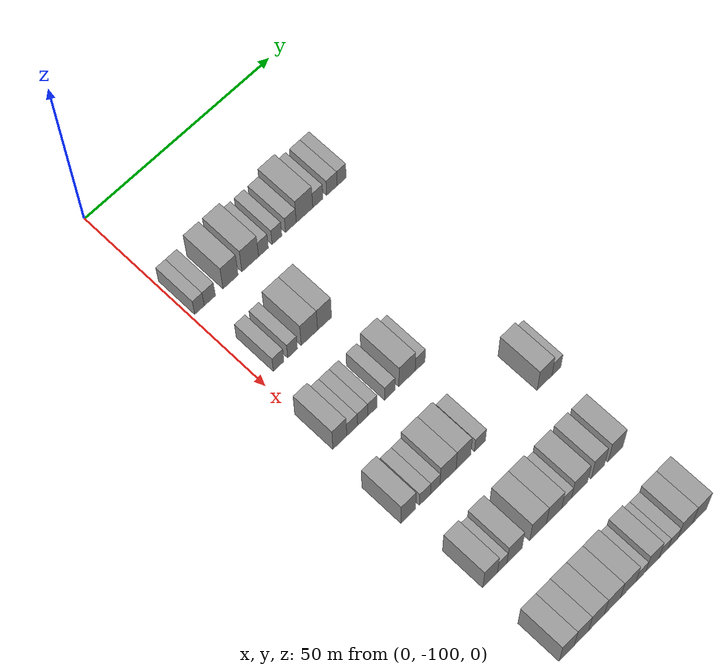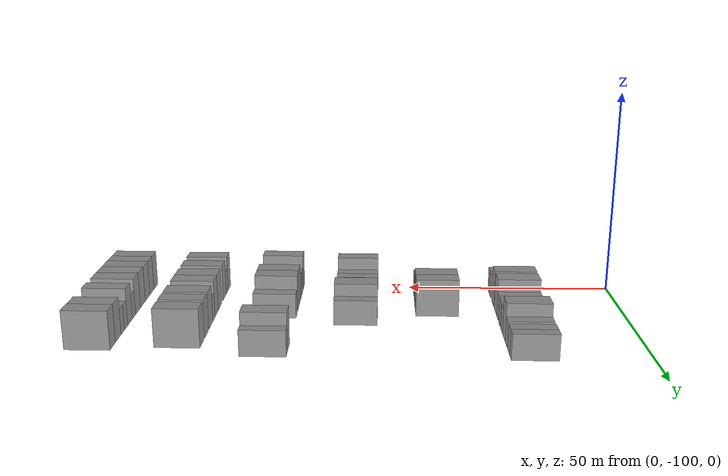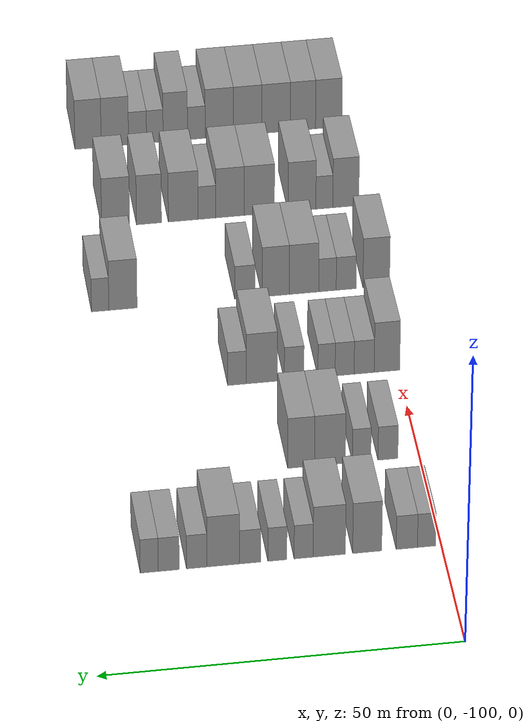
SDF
<sdf version="1.6">
 <world name="default">
  <model name="building_63">
   <static>1</static>
   <pose>25.0000 -97.9122 0 0.000000 0.000000 0.000000</pose>
   <link name="link">
    <pose>0 0 3.00 0 0 0</pose>
    <collision name="collision"><geometry><box><size>10.0000 2.5251 6.0000</size></box></geometry></collision>
    <visual name="visual">
     <cast_shadows>0</cast_shadows>
     <geometry><box><size>10.0000 2.5251 6.0000</size></box></geometry>
     <material>
      <script>
       <uri>model://grey_wall/materials/scripts</uri>
       <uri>model://grey_wall/materials/textures</uri>
       <name>vrc/grey_wall</name>
      </script>
     </material>
    </visual>
   </link>
  </model>
  <model name="building_64">
   <static>1</static>
   <pose>25.0000 -95.1780 0 0.000000 0.000000 0.000000</pose>
   <link name="link">
    <pose>0 0 3.00 0 0 0</pose>
    <collision name="collision"><geometry><box><size>10.0000 2.9433 6.0000</size></box></geometry></collision>
    <visual name="visual">
     <cast_shadows>0</cast_shadows>
     <geometry><box><size>10.0000 2.9433 6.0000</size></box></geometry>
     <material>
      <script>
       <uri>model://grey_wall/materials/scripts</uri>
       <uri>model://grey_wall/materials/textures</uri>
       <name>vrc/grey_wall</name>
      </script>
     </material>
    </visual>
   </link>
  </model>
  <model name="building_65">
   <static>1</static>
   <pose>25.0000 -89.6933 0 0.000000 0.000000 0.000000</pose>
   <link name="link">
    <pose>0 0 4.50 0 0 0</pose>
    <collision name="collision"><geometry><box><size>10.0000 4.0262 9.0000</size></box></geometry></collision>
    <visual name="visual">
     <cast_shadows>0</cast_shadows>
     <geometry><box><size>10.0000 4.0262 9.0000</size></box></geometry>
     <material>
      <script>
       <uri>model://grey_wall/materials/scripts</uri>
       <uri>model://grey_wall/materials/textures</uri>
       <name>vrc/grey_wall</name>
      </script>
     </material>
    </visual>
   </link>
  </model>
  <model name="building_66">
   <static>1</static>
   <pose>25.0000 -84.4462 0 0.000000 0.000000 0.000000</pose>
   <link name="link">
    <pose>0 0 4.50 0 0 0</pose>
    <collision name="collision"><geometry><box><size>10.0000 4.4679 9.0000</size></box></geometry></collision>
    <visual name="visual">
     <cast_shadows>0</cast_shadows>
     <geometry><box><size>10.0000 4.4679 9.0000</size></box></geometry>
     <material>
      <script>
       <uri>model://grey_wall/materials/scripts</uri>
       <uri>model://grey_wall/materials/textures</uri>
       <name>vrc/grey_wall</name>
      </script>
     </material>
    </visual>
   </link>
  </model>
  <model name="building_67">
   <static>1</static>
   <pose>25.0000 -80.8997 0 0.000000 0.000000 0.000000</pose>
   <link name="link">
    <pose>0 0 3.00 0 0 0</pose>
    <collision name="collision"><geometry><box><size>10.0000 2.6250 6.0000</size></box></geometry></collision>
    <visual name="visual">
     <cast_shadows>0</cast_shadows>
     <geometry><box><size>10.0000 2.6250 6.0000</size></box></geometry>
     <material>
      <script>
       <uri>model://grey_wall/materials/scripts</uri>
       <uri>model://grey_wall/materials/textures</uri>
       <name>vrc/grey_wall</name>
      </script>
     </material>
    </visual>
   </link>
  </model>
  <model name="building_68">
   <static>1</static>
   <pose>25.0000 -77.2748 0 0.000000 0.000000 0.000000</pose>
   <link name="link">
    <pose>0 0 3.00 0 0 0</pose>
    <collision name="collision"><geometry><box><size>10.0000 2.6249 6.0000</size></box></geometry></collision>
    <visual name="visual">
     <cast_shadows>0</cast_shadows>
     <geometry><box><size>10.0000 2.6249 6.0000</size></box></geometry>
     <material>
      <script>
       <uri>model://grey_wall/materials/scripts</uri>
       <uri>model://grey_wall/materials/textures</uri>
       <name>vrc/grey_wall</name>
      </script>
     </material>
    </visual>
   </link>
  </model>
  <model name="building_69">
   <static>1</static>
   <pose>25.0000 -73.5058 0 0.000000 0.000000 0.000000</pose>
   <link name="link">
    <pose>0 0 3.00 0 0 0</pose>
    <collision name="collision"><geometry><box><size>10.0000 2.9130 6.0000</size></box></geometry></collision>
    <visual name="visual">
     <cast_shadows>0</cast_shadows>
     <geometry><box><size>10.0000 2.9130 6.0000</size></box></geometry>
     <material>
      <script>
       <uri>model://grey_wall/materials/scripts</uri>
       <uri>model://grey_wall/materials/textures</uri>
       <name>vrc/grey_wall</name>
      </script>
     </material>
    </visual>
   </link>
  </model>
  <model name="building_70">
   <static>1</static>
   <pose>25.0000 -69.8031 0 0.000000 0.000000 0.000000</pose>
   <link name="link">
    <pose>0 0 4.50 0 0 0</pose>
    <collision name="collision"><geometry><box><size>10.0000 4.4925 9.0000</size></box></geometry></collision>
    <visual name="visual">
     <cast_shadows>0</cast_shadows>
     <geometry><box><size>10.0000 4.4925 9.0000</size></box></geometry>
     <material>
      <script>
       <uri>model://grey_wall/materials/scripts</uri>
       <uri>model://grey_wall/materials/textures</uri>
       <name>vrc/grey_wall</name>
      </script>
     </material>
    </visual>
   </link>
  </model>
  <model name="building_71">
   <static>1</static>
   <pose>25.0000 -66.1511 0 0.000000 0.000000 0.000000</pose>
   <link name="link">
    <pose>0 0 3.00 0 0 0</pose>
    <collision name="collision"><geometry><box><size>10.0000 2.8115 6.0000</size></box></geometry></collision>
    <visual name="visual">
     <cast_shadows>0</cast_shadows>
     <geometry><box><size>10.0000 2.8115 6.0000</size></box></geometry>
     <material>
      <script>
       <uri>model://grey_wall/materials/scripts</uri>
       <uri>model://grey_wall/materials/textures</uri>
       <name>vrc/grey_wall</name>
      </script>
     </material>
    </visual>
   </link>
  </model>
  <model name="building_72">
   <static>1</static>
   <pose>25.0000 -62.3027 0 0.000000 0.000000 0.000000</pose>
   <link name="link">
    <pose>0 0 3.00 0 0 0</pose>
    <collision name="collision"><geometry><box><size>10.0000 2.8853 6.0000</size></box></geometry></collision>
    <visual name="visual">
     <cast_shadows>0</cast_shadows>
     <geometry><box><size>10.0000 2.8853 6.0000</size></box></geometry>
     <material>
      <script>
       <uri>model://grey_wall/materials/scripts</uri>
       <uri>model://grey_wall/materials/textures</uri>
       <name>vrc/grey_wall</name>
      </script>
     </material>
    </visual>
   </link>
  </model>
  <model name="building_73">
   <static>1</static>
   <pose>25.0000 -59.6160 0 0.000000 0.000000 0.000000</pose>
   <link name="link">
    <pose>0 0 3.00 0 0 0</pose>
    <collision name="collision"><geometry><box><size>10.0000 2.4881 6.0000</size></box></geometry></collision>
    <visual name="visual">
     <cast_shadows>0</cast_shadows>
     <geometry><box><size>10.0000 2.4881 6.0000</size></box></geometry>
     <material>
      <script>
       <uri>model://grey_wall/materials/scripts</uri>
       <uri>model://grey_wall/materials/textures</uri>
       <name>vrc/grey_wall</name>
      </script>
     </material>
    </visual>
   </link>
  </model>
  <model name="building_230">
   <static>1</static>
   <pose>44.0000 -95.5404 0 0.000000 0.000000 0.000000</pose>
   <link name="link">
    <pose>0 0 3.00 0 0 0</pose>
    <collision name="collision"><geometry><box><size>10.0000 2.8029 6.0000</size></box></geometry></collision>
    <visual name="visual">
     <cast_shadows>0</cast_shadows>
     <geometry><box><size>10.0000 2.8029 6.0000</size></box></geometry>
     <material>
      <script>
       <uri>model://grey_wall/materials/scripts</uri>
       <uri>model://grey_wall/materials/textures</uri>
       <name>vrc/grey_wall</name>
      </script>
     </material>
    </visual>
   </link>
  </model>
  <model name="building_231">
   <static>1</static>
   <pose>44.0000 -91.8494 0 0.000000 0.000000 0.000000</pose>
   <link name="link">
    <pose>0 0 3.00 0 0 0</pose>
    <collision name="collision"><geometry><box><size>10.0000 2.5790 6.0000</size></box></geometry></collision>
    <visual name="visual">
     <cast_shadows>0</cast_shadows>
     <geometry><box><size>10.0000 2.5790 6.0000</size></box></geometry>
     <material>
      <script>
       <uri>model://grey_wall/materials/scripts</uri>
       <uri>model://grey_wall/materials/textures</uri>
       <name>vrc/grey_wall</name>
      </script>
     </material>
    </visual>
   </link>
  </model>
  <model name="building_232">
   <static>1</static>
   <pose>44.0000 -87.3892 0 0.000000 0.000000 0.000000</pose>
   <link name="link">
    <pose>0 0 4.50 0 0 0</pose>
    <collision name="collision"><geometry><box><size>10.0000 4.3413 9.0000</size></box></geometry></collision>
    <visual name="visual">
     <cast_shadows>0</cast_shadows>
     <geometry><box><size>10.0000 4.3413 9.0000</size></box></geometry>
     <material>
      <script>
       <uri>model://grey_wall/materials/scripts</uri>
       <uri>model://grey_wall/materials/textures</uri>
       <name>vrc/grey_wall</name>
      </script>
     </material>
    </visual>
   </link>
  </model>
  <model name="building_233">
   <static>1</static>
   <pose>44.0000 -83.3372 0 0.000000 0.000000 0.000000</pose>
   <link name="link">
    <pose>0 0 4.50 0 0 0</pose>
    <collision name="collision"><geometry><box><size>10.0000 3.7626 9.0000</size></box></geometry></collision>
    <visual name="visual">
     <cast_shadows>0</cast_shadows>
     <geometry><box><size>10.0000 3.7626 9.0000</size></box></geometry>
     <material>
      <script>
       <uri>model://grey_wall/materials/scripts</uri>
       <uri>model://grey_wall/materials/textures</uri>
       <name>vrc/grey_wall</name>
      </script>
     </material>
    </visual>
   </link>
  </model>
  <model name="building_407">
   <static>1</static>
   <pose>63.0000 -98.3850 0 0.000000 0.000000 0.000000</pose>
   <link name="link">
    <pose>0 0 4.50 0 0 0</pose>
    <collision name="collision"><geometry><box><size>10.0000 3.6473 9.0000</size></box></geometry></collision>
    <visual name="visual">
     <cast_shadows>0</cast_shadows>
     <geometry><box><size>10.0000 3.6473 9.0000</size></box></geometry>
     <material>
      <script>
       <uri>model://grey_wall/materials/scripts</uri>
       <uri>model://grey_wall/materials/textures</uri>
       <name>vrc/grey_wall</name>
      </script>
     </material>
    </visual>
   </link>
  </model>
  <model name="building_408">
   <static>1</static>
   <pose>63.0000 -95.1314 0 0.000000 0.000000 0.000000</pose>
   <link name="link">
    <pose>0 0 3.00 0 0 0</pose>
    <collision name="collision"><geometry><box><size>10.0000 2.8600 6.0000</size></box></geometry></collision>
    <visual name="visual">
     <cast_shadows>0</cast_shadows>
     <geometry><box><size>10.0000 2.8600 6.0000</size></box></geometry>
     <material>
      <script>
       <uri>model://grey_wall/materials/scripts</uri>
       <uri>model://grey_wall/materials/textures</uri>
       <name>vrc/grey_wall</name>
      </script>
     </material>
    </visual>
   </link>
  </model>
  <model name="building_409">
   <static>1</static>
   <pose>63.0000 -92.3393 0 0.000000 0.000000 0.000000</pose>
   <link name="link">
    <pose>0 0 3.00 0 0 0</pose>
    <collision name="collision"><geometry><box><size>10.0000 2.7242 6.0000</size></box></geometry></collision>
    <visual name="visual">
     <cast_shadows>0</cast_shadows>
     <geometry><box><size>10.0000 2.7242 6.0000</size></box></geometry>
     <material>
      <script>
       <uri>model://grey_wall/materials/scripts</uri>
       <uri>model://grey_wall/materials/textures</uri>
       <name>vrc/grey_wall</name>
      </script>
     </material>
    </visual>
   </link>
  </model>
  <model name="building_410">
   <static>1</static>
   <pose>63.0000 -89.7533 0 0.000000 0.000000 0.000000</pose>
   <link name="link">
    <pose>0 0 3.00 0 0 0</pose>
    <collision name="collision"><geometry><box><size>10.0000 2.4479 6.0000</size></box></geometry></collision>
    <visual name="visual">
     <cast_shadows>0</cast_shadows>
     <geometry><box><size>10.0000 2.4479 6.0000</size></box></geometry>
     <material>
      <script>
       <uri>model://grey_wall/materials/scripts</uri>
       <uri>model://grey_wall/materials/textures</uri>
       <name>vrc/grey_wall</name>
      </script>
     </material>
    </visual>
   </link>
  </model>
  <model name="building_411">
   <static>1</static>
   <pose>63.0000 -85.1316 0 0.000000 0.000000 0.000000</pose>
   <link name="link">
    <pose>0 0 3.00 0 0 0</pose>
    <collision name="collision"><geometry><box><size>10.0000 2.7955 6.0000</size></box></geometry></collision>
    <visual name="visual">
     <cast_shadows>0</cast_shadows>
     <geometry><box><size>10.0000 2.7955 6.0000</size></box></geometry>
     <material>
      <script>
       <uri>model://grey_wall/materials/scripts</uri>
       <uri>model://grey_wall/materials/textures</uri>
       <name>vrc/grey_wall</name>
      </script>
     </material>
    </visual>
   </link>
  </model>
  <model name="building_412">
   <static>1</static>
   <pose>63.0000 -80.5364 0 0.000000 0.000000 0.000000</pose>
   <link name="link">
    <pose>0 0 4.50 0 0 0</pose>
    <collision name="collision"><geometry><box><size>10.0000 4.3949 9.0000</size></box></geometry></collision>
    <visual name="visual">
     <cast_shadows>0</cast_shadows>
     <geometry><box><size>10.0000 4.3949 9.0000</size></box></geometry>
     <material>
      <script>
       <uri>model://grey_wall/materials/scripts</uri>
       <uri>model://grey_wall/materials/textures</uri>
       <name>vrc/grey_wall</name>
      </script>
     </material>
    </visual>
   </link>
  </model>
  <model name="building_413">
   <static>1</static>
   <pose>63.0000 -77.0027 0 0.000000 0.000000 0.000000</pose>
   <link name="link">
    <pose>0 0 3.00 0 0 0</pose>
    <collision name="collision"><geometry><box><size>10.0000 2.6724 6.0000</size></box></geometry></collision>
    <visual name="visual">
     <cast_shadows>0</cast_shadows>
     <geometry><box><size>10.0000 2.6724 6.0000</size></box></geometry>
     <material>
      <script>
       <uri>model://grey_wall/materials/scripts</uri>
       <uri>model://grey_wall/materials/textures</uri>
       <name>vrc/grey_wall</name>
      </script>
     </material>
    </visual>
   </link>
  </model>
  <model name="building_586">
   <static>1</static>
   <pose>82.0000 -99.8095 0 0.000000 0.000000 0.000000</pose>
   <link name="link">
    <pose>0 0 4.50 0 0 0</pose>
    <collision name="collision"><geometry><box><size>10.0000 3.8514 9.0000</size></box></geometry></collision>
    <visual name="visual">
     <cast_shadows>0</cast_shadows>
     <geometry><box><size>10.0000 3.8514 9.0000</size></box></geometry>
     <material>
      <script>
       <uri>model://grey_wall/materials/scripts</uri>
       <uri>model://grey_wall/materials/textures</uri>
       <name>vrc/grey_wall</name>
      </script>
     </material>
    </visual>
   </link>
  </model>
  <model name="building_587">
   <static>1</static>
   <pose>82.0000 -95.4429 0 0.000000 0.000000 0.000000</pose>
   <link name="link">
    <pose>0 0 3.00 0 0 0</pose>
    <collision name="collision"><geometry><box><size>10.0000 2.8818 6.0000</size></box></geometry></collision>
    <visual name="visual">
     <cast_shadows>0</cast_shadows>
     <geometry><box><size>10.0000 2.8818 6.0000</size></box></geometry>
     <material>
      <script>
       <uri>model://grey_wall/materials/scripts</uri>
       <uri>model://grey_wall/materials/textures</uri>
       <name>vrc/grey_wall</name>
      </script>
     </material>
    </visual>
   </link>
  </model>
  <model name="building_588">
   <static>1</static>
   <pose>82.0000 -92.7356 0 0.000000 0.000000 0.000000</pose>
   <link name="link">
    <pose>0 0 3.00 0 0 0</pose>
    <collision name="collision"><geometry><box><size>10.0000 2.5328 6.0000</size></box></geometry></collision>
    <visual name="visual">
     <cast_shadows>0</cast_shadows>
     <geometry><box><size>10.0000 2.5328 6.0000</size></box></geometry>
     <material>
      <script>
       <uri>model://grey_wall/materials/scripts</uri>
       <uri>model://grey_wall/materials/textures</uri>
       <name>vrc/grey_wall</name>
      </script>
     </material>
    </visual>
   </link>
  </model>
  <model name="building_589">
   <static>1</static>
   <pose>82.0000 -89.3349 0 0.000000 0.000000 0.000000</pose>
   <link name="link">
    <pose>0 0 4.50 0 0 0</pose>
    <collision name="collision"><geometry><box><size>10.0000 4.2684 9.0000</size></box></geometry></collision>
    <visual name="visual">
     <cast_shadows>0</cast_shadows>
     <geometry><box><size>10.0000 4.2684 9.0000</size></box></geometry>
     <material>
      <script>
       <uri>model://grey_wall/materials/scripts</uri>
       <uri>model://grey_wall/materials/textures</uri>
       <name>vrc/grey_wall</name>
      </script>
     </material>
    </visual>
   </link>
  </model>
  <model name="building_590">
   <static>1</static>
   <pose>82.0000 -85.2344 0 0.000000 0.000000 0.000000</pose>
   <link name="link">
    <pose>0 0 4.50 0 0 0</pose>
    <collision name="collision"><geometry><box><size>10.0000 3.9326 9.0000</size></box></geometry></collision>
    <visual name="visual">
     <cast_shadows>0</cast_shadows>
     <geometry><box><size>10.0000 3.9326 9.0000</size></box></geometry>
     <material>
      <script>
       <uri>model://grey_wall/materials/scripts</uri>
       <uri>model://grey_wall/materials/textures</uri>
       <name>vrc/grey_wall</name>
      </script>
     </material>
    </visual>
   </link>
  </model>
  <model name="building_591">
   <static>1</static>
   <pose>82.0000 -80.7839 0 0.000000 0.000000 0.000000</pose>
   <link name="link">
    <pose>0 0 3.00 0 0 0</pose>
    <collision name="collision"><geometry><box><size>10.0000 2.9685 6.0000</size></box></geometry></collision>
    <visual name="visual">
     <cast_shadows>0</cast_shadows>
     <geometry><box><size>10.0000 2.9685 6.0000</size></box></geometry>
     <material>
      <script>
       <uri>model://grey_wall/materials/scripts</uri>
       <uri>model://grey_wall/materials/textures</uri>
       <name>vrc/grey_wall</name>
      </script>
     </material>
    </visual>
   </link>
  </model>
  <model name="building_592">
   <static>1</static>
   <pose>82.0000 -63.1893 0 0.000000 0.000000 0.000000</pose>
   <link name="link">
    <pose>0 0 4.50 0 0 0</pose>
    <collision name="collision"><geometry><box><size>10.0000 4.0735 9.0000</size></box></geometry></collision>
    <visual name="visual">
     <cast_shadows>0</cast_shadows>
     <geometry><box><size>10.0000 4.0735 9.0000</size></box></geometry>
     <material>
      <script>
       <uri>model://grey_wall/materials/scripts</uri>
       <uri>model://grey_wall/materials/textures</uri>
       <name>vrc/grey_wall</name>
      </script>
     </material>
    </visual>
   </link>
  </model>
  <model name="building_593">
   <static>1</static>
   <pose>82.0000 -59.9024 0 0.000000 0.000000 0.000000</pose>
   <link name="link">
    <pose>0 0 3.00 0 0 0</pose>
    <collision name="collision"><geometry><box><size>10.0000 2.5005 6.0000</size></box></geometry></collision>
    <visual name="visual">
     <cast_shadows>0</cast_shadows>
     <geometry><box><size>10.0000 2.5005 6.0000</size></box></geometry>
     <material>
      <script>
       <uri>model://grey_wall/materials/scripts</uri>
       <uri>model://grey_wall/materials/textures</uri>
       <name>vrc/grey_wall</name>
      </script>
     </material>
    </visual>
   </link>
  </model>
  <model name="building_757">
   <static>1</static>
   <pose>101.0000 -98.2800 0 0.000000 0.000000 0.000000</pose>
   <link name="link">
    <pose>0 0 4.50 0 0 0</pose>
    <collision name="collision"><geometry><box><size>10.0000 3.8312 9.0000</size></box></geometry></collision>
    <visual name="visual">
     <cast_shadows>0</cast_shadows>
     <geometry><box><size>10.0000 3.8312 9.0000</size></box></geometry>
     <material>
      <script>
       <uri>model://grey_wall/materials/scripts</uri>
       <uri>model://grey_wall/materials/textures</uri>
       <name>vrc/grey_wall</name>
      </script>
     </material>
    </visual>
   </link>
  </model>
  <model name="building_758">
   <static>1</static>
   <pose>101.0000 -95.1183 0 0.000000 0.000000 0.000000</pose>
   <link name="link">
    <pose>0 0 3.00 0 0 0</pose>
    <collision name="collision"><geometry><box><size>10.0000 2.4922 6.0000</size></box></geometry></collision>
    <visual name="visual">
     <cast_shadows>0</cast_shadows>
     <geometry><box><size>10.0000 2.4922 6.0000</size></box></geometry>
     <material>
      <script>
       <uri>model://grey_wall/materials/scripts</uri>
       <uri>model://grey_wall/materials/textures</uri>
       <name>vrc/grey_wall</name>
      </script>
     </material>
    </visual>
   </link>
  </model>
  <model name="building_759">
   <static>1</static>
   <pose>101.0000 -91.8290 0 0.000000 0.000000 0.000000</pose>
   <link name="link">
    <pose>0 0 4.50 0 0 0</pose>
    <collision name="collision"><geometry><box><size>10.0000 4.0863 9.0000</size></box></geometry></collision>
    <visual name="visual">
     <cast_shadows>0</cast_shadows>
     <geometry><box><size>10.0000 4.0863 9.0000</size></box></geometry>
     <material>
      <script>
       <uri>model://grey_wall/materials/scripts</uri>
       <uri>model://grey_wall/materials/textures</uri>
       <name>vrc/grey_wall</name>
      </script>
     </material>
    </visual>
   </link>
  </model>
  <model name="building_760">
   <static>1</static>
   <pose>101.0000 -85.5643 0 0.000000 0.000000 0.000000</pose>
   <link name="link">
    <pose>0 0 4.50 0 0 0</pose>
    <collision name="collision"><geometry><box><size>10.0000 4.4431 9.0000</size></box></geometry></collision>
    <visual name="visual">
     <cast_shadows>0</cast_shadows>
     <geometry><box><size>10.0000 4.4431 9.0000</size></box></geometry>
     <material>
      <script>
       <uri>model://grey_wall/materials/scripts</uri>
       <uri>model://grey_wall/materials/textures</uri>
       <name>vrc/grey_wall</name>
      </script>
     </material>
    </visual>
   </link>
  </model>
  <model name="building_761">
   <static>1</static>
   <pose>101.0000 -81.2622 0 0.000000 0.000000 0.000000</pose>
   <link name="link">
    <pose>0 0 4.50 0 0 0</pose>
    <collision name="collision"><geometry><box><size>10.0000 4.1611 9.0000</size></box></geometry></collision>
    <visual name="visual">
     <cast_shadows>0</cast_shadows>
     <geometry><box><size>10.0000 4.1611 9.0000</size></box></geometry>
     <material>
      <script>
       <uri>model://grey_wall/materials/scripts</uri>
       <uri>model://grey_wall/materials/textures</uri>
       <name>vrc/grey_wall</name>
      </script>
     </material>
    </visual>
   </link>
  </model>
  <model name="building_762">
   <static>1</static>
   <pose>101.0000 -77.8725 0 0.000000 0.000000 0.000000</pose>
   <link name="link">
    <pose>0 0 3.00 0 0 0</pose>
    <collision name="collision"><geometry><box><size>10.0000 2.6184 6.0000</size></box></geometry></collision>
    <visual name="visual">
     <cast_shadows>0</cast_shadows>
     <geometry><box><size>10.0000 2.6184 6.0000</size></box></geometry>
     <material>
      <script>
       <uri>model://grey_wall/materials/scripts</uri>
       <uri>model://grey_wall/materials/textures</uri>
       <name>vrc/grey_wall</name>
      </script>
     </material>
    </visual>
   </link>
  </model>
  <model name="building_763">
   <static>1</static>
   <pose>101.0000 -74.3894 0 0.000000 0.000000 0.000000</pose>
   <link name="link">
    <pose>0 0 4.50 0 0 0</pose>
    <collision name="collision"><geometry><box><size>10.0000 4.3477 9.0000</size></box></geometry></collision>
    <visual name="visual">
     <cast_shadows>0</cast_shadows>
     <geometry><box><size>10.0000 4.3477 9.0000</size></box></geometry>
     <material>
      <script>
       <uri>model://grey_wall/materials/scripts</uri>
       <uri>model://grey_wall/materials/textures</uri>
       <name>vrc/grey_wall</name>
      </script>
     </material>
    </visual>
   </link>
  </model>
  <model name="building_764">
   <static>1</static>
   <pose>101.0000 -69.3846 0 0.000000 0.000000 0.000000</pose>
   <link name="link">
    <pose>0 0 4.50 0 0 0</pose>
    <collision name="collision"><geometry><box><size>10.0000 3.6620 9.0000</size></box></geometry></collision>
    <visual name="visual">
     <cast_shadows>0</cast_shadows>
     <geometry><box><size>10.0000 3.6620 9.0000</size></box></geometry>
     <material>
      <script>
       <uri>model://grey_wall/materials/scripts</uri>
       <uri>model://grey_wall/materials/textures</uri>
       <name>vrc/grey_wall</name>
      </script>
     </material>
    </visual>
   </link>
  </model>
  <model name="building_765">
   <static>1</static>
   <pose>101.0000 -64.5102 0 0.000000 0.000000 0.000000</pose>
   <link name="link">
    <pose>0 0 4.50 0 0 0</pose>
    <collision name="collision"><geometry><box><size>10.0000 4.0869 9.0000</size></box></geometry></collision>
    <visual name="visual">
     <cast_shadows>0</cast_shadows>
     <geometry><box><size>10.0000 4.0869 9.0000</size></box></geometry>
     <material>
      <script>
       <uri>model://grey_wall/materials/scripts</uri>
       <uri>model://grey_wall/materials/textures</uri>
       <name>vrc/grey_wall</name>
      </script>
     </material>
    </visual>
   </link>
  </model>
  <model name="building_935">
   <static>1</static>
   <pose>120.0000 -98.6192 0 0.000000 0.000000 0.000000</pose>
   <link name="link">
    <pose>0 0 4.50 0 0 0</pose>
    <collision name="collision"><geometry><box><size>10.0000 3.9561 9.0000</size></box></geometry></collision>
    <visual name="visual">
     <cast_shadows>0</cast_shadows>
     <geometry><box><size>10.0000 3.9561 9.0000</size></box></geometry>
     <material>
      <script>
       <uri>model://grey_wall/materials/scripts</uri>
       <uri>model://grey_wall/materials/textures</uri>
       <name>vrc/grey_wall</name>
      </script>
     </material>
    </visual>
   </link>
  </model>
  <model name="building_936">
   <static>1</static>
   <pose>120.0000 -94.7651 0 0.000000 0.000000 0.000000</pose>
   <link name="link">
    <pose>0 0 4.50 0 0 0</pose>
    <collision name="collision"><geometry><box><size>10.0000 3.7521 9.0000</size></box></geometry></collision>
    <visual name="visual">
     <cast_shadows>0</cast_shadows>
     <geometry><box><size>10.0000 3.7521 9.0000</size></box></geometry>
     <material>
      <script>
       <uri>model://grey_wall/materials/scripts</uri>
       <uri>model://grey_wall/materials/textures</uri>
       <name>vrc/grey_wall</name>
      </script>
     </material>
    </visual>
   </link>
  </model>
  <model name="building_937">
   <static>1</static>
   <pose>120.0000 -90.7686 0 0.000000 0.000000 0.000000</pose>
   <link name="link">
    <pose>0 0 4.50 0 0 0</pose>
    <collision name="collision"><geometry><box><size>10.0000 4.2409 9.0000</size></box></geometry></collision>
    <visual name="visual">
     <cast_shadows>0</cast_shadows>
     <geometry><box><size>10.0000 4.2409 9.0000</size></box></geometry>
     <material>
      <script>
       <uri>model://grey_wall/materials/scripts</uri>
       <uri>model://grey_wall/materials/textures</uri>
       <name>vrc/grey_wall</name>
      </script>
     </material>
    </visual>
   </link>
  </model>
  <model name="building_938">
   <static>1</static>
   <pose>120.0000 -86.5246 0 0.000000 0.000000 0.000000</pose>
   <link name="link">
    <pose>0 0 4.50 0 0 0</pose>
    <collision name="collision"><geometry><box><size>10.0000 4.2471 9.0000</size></box></geometry></collision>
    <visual name="visual">
     <cast_shadows>0</cast_shadows>
     <geometry><box><size>10.0000 4.2471 9.0000</size></box></geometry>
     <material>
      <script>
       <uri>model://grey_wall/materials/scripts</uri>
       <uri>model://grey_wall/materials/textures</uri>
       <name>vrc/grey_wall</name>
      </script>
     </material>
    </visual>
   </link>
  </model>
  <model name="building_939">
   <static>1</static>
   <pose>120.0000 -82.2936 0 0.000000 0.000000 0.000000</pose>
   <link name="link">
    <pose>0 0 4.50 0 0 0</pose>
    <collision name="collision"><geometry><box><size>10.0000 4.2149 9.0000</size></box></geometry></collision>
    <visual name="visual">
     <cast_shadows>0</cast_shadows>
     <geometry><box><size>10.0000 4.2149 9.0000</size></box></geometry>
     <material>
      <script>
       <uri>model://grey_wall/materials/scripts</uri>
       <uri>model://grey_wall/materials/textures</uri>
       <name>vrc/grey_wall</name>
      </script>
     </material>
    </visual>
   </link>
  </model>
  <model name="building_940">
   <static>1</static>
   <pose>120.0000 -78.8772 0 0.000000 0.000000 0.000000</pose>
   <link name="link">
    <pose>0 0 3.00 0 0 0</pose>
    <collision name="collision"><geometry><box><size>10.0000 2.6180 6.0000</size></box></geometry></collision>
    <visual name="visual">
     <cast_shadows>0</cast_shadows>
     <geometry><box><size>10.0000 2.6180 6.0000</size></box></geometry>
     <material>
      <script>
       <uri>model://grey_wall/materials/scripts</uri>
       <uri>model://grey_wall/materials/textures</uri>
       <name>vrc/grey_wall</name>
      </script>
     </material>
    </visual>
   </link>
  </model>
  <model name="building_941">
   <static>1</static>
   <pose>120.0000 -75.7537 0 0.000000 0.000000 0.000000</pose>
   <link name="link">
    <pose>0 0 4.50 0 0 0</pose>
    <collision name="collision"><geometry><box><size>10.0000 3.6290 9.0000</size></box></geometry></collision>
    <visual name="visual">
     <cast_shadows>0</cast_shadows>
     <geometry><box><size>10.0000 3.6290 9.0000</size></box></geometry>
     <material>
      <script>
       <uri>model://grey_wall/materials/scripts</uri>
       <uri>model://grey_wall/materials/textures</uri>
       <name>vrc/grey_wall</name>
      </script>
     </material>
    </visual>
   </link>
  </model>
  <model name="building_942">
   <static>1</static>
   <pose>120.0000 -72.7046 0 0.000000 0.000000 0.000000</pose>
   <link name="link">
    <pose>0 0 3.00 0 0 0</pose>
    <collision name="collision"><geometry><box><size>10.0000 2.4692 6.0000</size></box></geometry></collision>
    <visual name="visual">
     <cast_shadows>0</cast_shadows>
     <geometry><box><size>10.0000 2.4692 6.0000</size></box></geometry>
     <material>
      <script>
       <uri>model://grey_wall/materials/scripts</uri>
       <uri>model://grey_wall/materials/textures</uri>
       <name>vrc/grey_wall</name>
      </script>
     </material>
    </visual>
   </link>
  </model>
  <model name="building_943">
   <static>1</static>
   <pose>120.0000 -70.1308 0 0.000000 0.000000 0.000000</pose>
   <link name="link">
    <pose>0 0 3.00 0 0 0</pose>
    <collision name="collision"><geometry><box><size>10.0000 2.6785 6.0000</size></box></geometry></collision>
    <visual name="visual">
     <cast_shadows>0</cast_shadows>
     <geometry><box><size>10.0000 2.6785 6.0000</size></box></geometry>
     <material>
      <script>
       <uri>model://grey_wall/materials/scripts</uri>
       <uri>model://grey_wall/materials/textures</uri>
       <name>vrc/grey_wall</name>
      </script>
     </material>
    </visual>
   </link>
  </model>
  <model name="building_944">
   <static>1</static>
   <pose>120.0000 -66.7650 0 0.000000 0.000000 0.000000</pose>
   <link name="link">
    <pose>0 0 4.50 0 0 0</pose>
    <collision name="collision"><geometry><box><size>10.0000 4.0532 9.0000</size></box></geometry></collision>
    <visual name="visual">
     <cast_shadows>0</cast_shadows>
     <geometry><box><size>10.0000 4.0532 9.0000</size></box></geometry>
     <material>
      <script>
       <uri>model://grey_wall/materials/scripts</uri>
       <uri>model://grey_wall/materials/textures</uri>
       <name>vrc/grey_wall</name>
      </script>
     </material>
    </visual>
   </link>
  </model>
  <model name="building_945">
   <static>1</static>
   <pose>120.0000 -62.7921 0 0.000000 0.000000 0.000000</pose>
   <link name="link">
    <pose>0 0 4.50 0 0 0</pose>
    <collision name="collision"><geometry><box><size>10.0000 3.8925 9.0000</size></box></geometry></collision>
    <visual name="visual">
     <cast_shadows>0</cast_shadows>
     <geometry><box><size>10.0000 3.8925 9.0000</size></box></geometry>
     <material>
      <script>
       <uri>model://grey_wall/materials/scripts</uri>
       <uri>model://grey_wall/materials/textures</uri>
       <name>vrc/grey_wall</name>
      </script>
     </material>
    </visual>
   </link>
  </model>
 </world>
</sdf>
